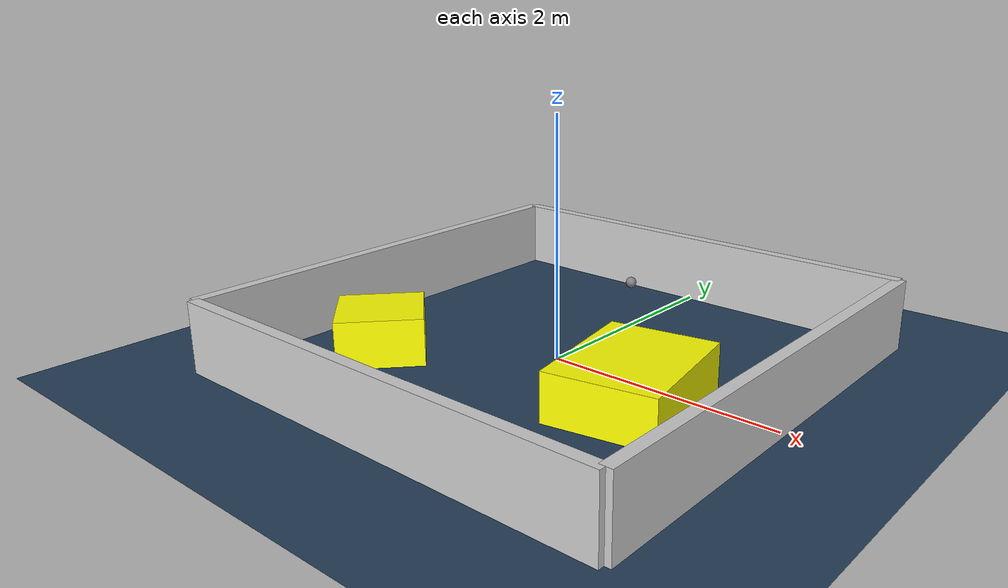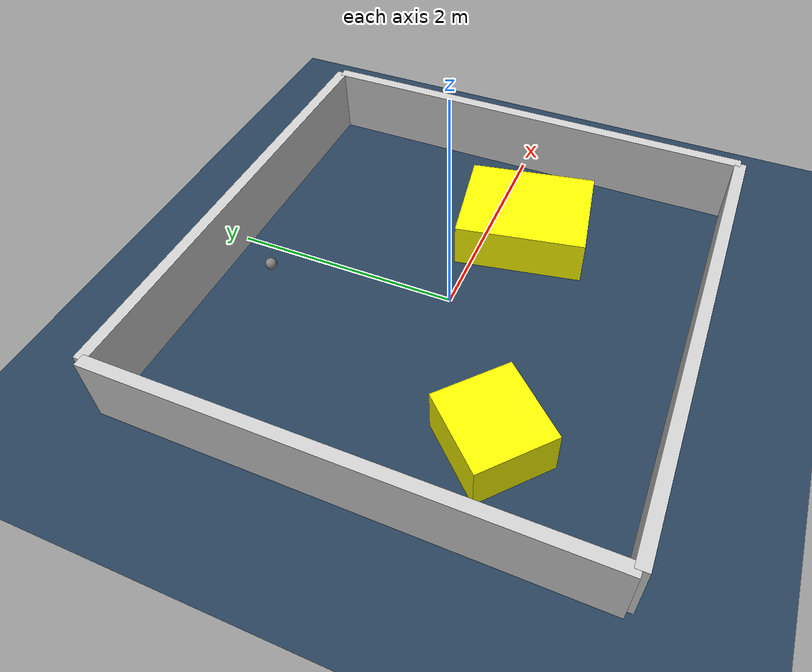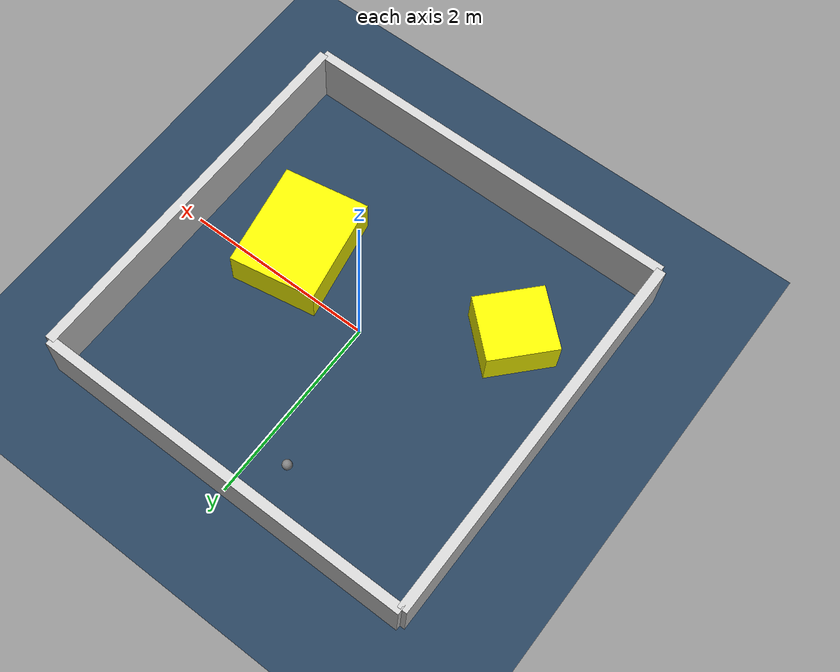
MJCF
<?xml version="1.0" ?>
<mujoco model="generated_environment">
  <option timestep="0.01" integrator="RK4" cone="elliptic"/>
  <default>
    <geom density="1"/>
  </default>
  <asset>
    <texture builtin="gradient" height="3072" rgb1="0.3 0.5 0.7" rgb2="0 0 0" type="skybox" width="512"/>
    <texture builtin="checker" height="300" mark="edge" markrgb="0.8 0.8 0.8" name="groundplane" rgb1="0.2 0.3 0.4" rgb2="0.1 0.2 0.3" type="2d" width="300"/>
    <material name="groundplane" reflectance="0.2" texrepeat="5 5" texture="groundplane" texuniform="true"/>
    <material name="robot" rgba="0.0 1.0 0.0 1"/>
  </asset>
  <worldbody>
    <light dir="0 0 -1" directional="true" pos="0 0 1.5"/>
    <geom condim="4" friction="1.0 0.005 0.001" material="groundplane" name="floor" size="0 0 0.05" type="plane"/>
    <body name="walls">
      <geom name="wall_1" condim="4" pos="-2.0 0.0 0.3" rgba="0.800000011920929 0.800000011920929 0.800000011920929 1.0" size="0.05 2.0 0.3" type="box"/>
      <geom name="wall_2" condim="4" pos="2.0 0.0 0.3" rgba="0.800000011920929 0.800000011920929 0.800000011920929 1.0" size="0.05 2.0 0.3" type="box"/>
      <geom name="wall_3" condim="4" pos="0.0 -2.0 0.3" rgba="0.800000011920929 0.800000011920929 0.800000011920929 1.0" size="2.0 0.05 0.3" type="box"/>
      <geom name="wall_4" condim="4" pos="0.0 2.0 0.3" rgba="0.800000011920929 0.800000011920929 0.800000011920929 1.0" size="2.0 0.05 0.3" type="box"/>
    </body>
    <body name="robot">
      <joint name="joint_x" type="slide" pos="0 0 0" axis="1 0 0"/>
      <joint name="joint_y" type="slide" pos="0 0 0" axis="0 1 0"/>
      <geom name="robot" type="sphere" pos="-0.3521400067487228 1.5072903444176227 0.2" size="0.05" mass="5." friction="1.0 0.005 0.0001" condim="4"/>
      <site name="sensor_ball"/>
    </body>
    <body name="obstacle_1_movable">
      <geom name="obstacle_1_movable" condim="4" pos="0.9865141258236676 -0.33635460001165374 0.2" euler="0 0 10.137197325356837" friction="1.0 0.005 0.001" rgba="1 1 0 1" size="0.4487500659164344 0.5583219119919469 0.2" type="box" mass="0.1"/>
      <joint type="free"/>
    </body>
    <body name="obstacle_2_movable">
      <geom name="obstacle_2_movable" condim="4" pos="-1.2053551609891795 -0.8211302651260378 0.2" euler="0 0 137.58238215285536" friction="1.0 0.005 0.001" rgba="1 1 0 1" size="0.3342903560510043 0.3546400422765301 0.2" type="box" mass="0.1"/>
      <joint type="free"/>
    </body>
  </worldbody>
  <actuator>
    <motor name="actuator_x" joint="joint_x" gear="1" ctrlrange="-1 1"/>
    <motor name="actuator_y" joint="joint_y" gear="1" ctrlrange="-1 1"/>
  </actuator>
</mujoco>
